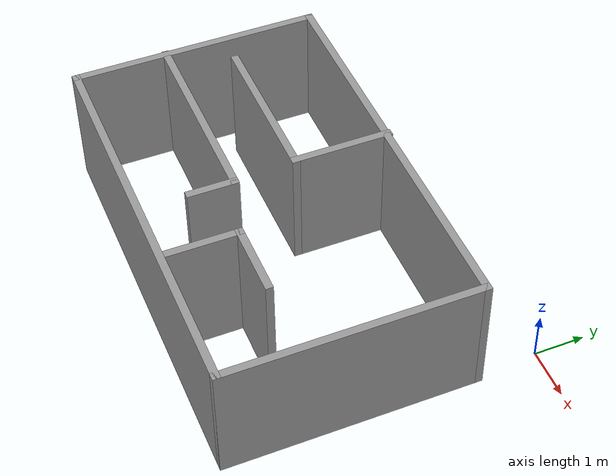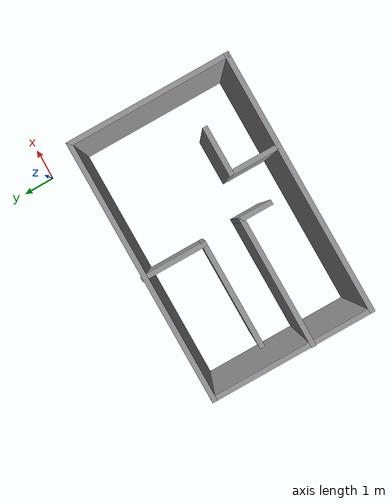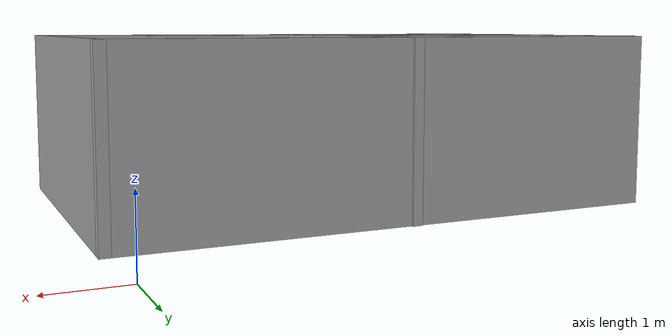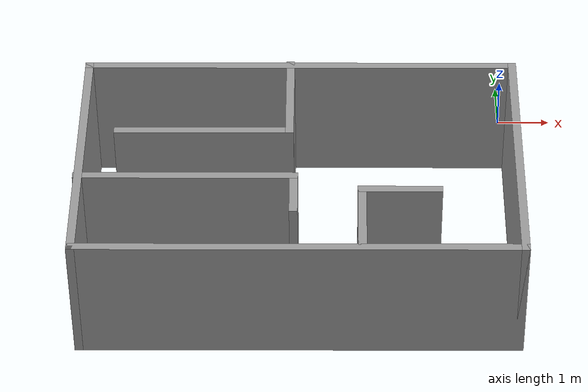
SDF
<?xml version='1.0'?>
<sdf version='1.7'>
  <model name='room'>
    <pose>-3.835 -3.0825 0 0 -0 0</pose>
    <link name='Wall_0'>
      <collision name='Wall_0_Collision'>
        <geometry>
          <box>
            <size>8 0.15 2.5</size>
          </box>
        </geometry>
        <pose>0 0 1.25 0 -0 0</pose>
      </collision>
      <visual name='Wall_0_Visual'>
        <pose>0 0 1.25 0 -0 0</pose>
        <geometry>
          <box>
            <size>8 0.15 2.5</size>
          </box>
        </geometry>
        <material>
          <script>
            <uri>file://media/materials/scripts/gazebo.material</uri>
            <name>Gazebo/Grey</name>
          </script>
          <ambient>1 1 1 1</ambient>
        </material>
        <meta>
          <layer>0</layer>
        </meta>
      </visual>
      <pose>0.01 1.8425 0 0 -0 3.14159</pose>
    </link>
    <link name='Wall_1'>
      <collision name='Wall_1_Collision'>
        <geometry>
          <box>
            <size>5 0.15 2.5</size>
          </box>
        </geometry>
        <pose>0 0 1.25 0 -0 0</pose>
      </collision>
      <visual name='Wall_1_Visual'>
        <pose>0 0 1.25 0 -0 0</pose>
        <geometry>
          <box>
            <size>5 0.15 2.5</size>
          </box>
        </geometry>
        <material>
          <script>
            <uri>file://media/materials/scripts/gazebo.material</uri>
            <name>Gazebo/Grey</name>
          </script>
          <ambient>1 1 1 1</ambient>
        </material>
        <meta>
          <layer>0</layer>
        </meta>
      </visual>
      <pose>-3.915 -0.5825 0 0 -0 -1.5708</pose>
    </link>
    <link name='Wall_10'>
      <collision name='Wall_10_Collision'>
        <geometry>
          <box>
            <size>4 0.15 2.5</size>
          </box>
        </geometry>
        <pose>0 0 1.25 0 -0 0</pose>
      </collision>
      <visual name='Wall_10_Visual'>
        <pose>0 0 1.25 0 -0 0</pose>
        <geometry>
          <box>
            <size>4 0.15 2.5</size>
          </box>
        </geometry>
        <material>
          <script>
            <uri>file://media/materials/scripts/gazebo.material</uri>
            <name>Gazebo/Grey</name>
          </script>
          <ambient>1 1 1 1</ambient>
        </material>
        <meta>
          <layer>0</layer>
        </meta>
      </visual>
      <pose>-2.01 -1.1875 0 0 -0 0</pose>
    </link>
    <link name='Wall_11'>
      <collision name='Wall_11_Collision'>
        <geometry>
          <box>
            <size>1 0.15 2.5</size>
          </box>
        </geometry>
        <pose>0 0 1.25 0 -0 0</pose>
      </collision>
      <visual name='Wall_11_Visual'>
        <pose>0 0 1.25 0 -0 0</pose>
        <geometry>
          <box>
            <size>1 0.15 2.5</size>
          </box>
        </geometry>
        <material>
          <script>
            <uri>file://media/materials/scripts/gazebo.material</uri>
            <name>Gazebo/Grey</name>
          </script>
          <ambient>1 1 1 1</ambient>
        </material>
        <meta>
          <layer>0</layer>
        </meta>
      </visual>
      <pose>-0.085 -1.6125 0 0 -0 -1.5708</pose>
    </link>
    <link name='Wall_13'>
      <collision name='Wall_13_Collision'>
        <geometry>
          <box>
            <size>1.5 0.15 2.5</size>
          </box>
        </geometry>
        <pose>0 0 1.25 0 -0 0</pose>
      </collision>
      <visual name='Wall_13_Visual'>
        <pose>0 0 1.25 0 -0 0</pose>
        <geometry>
          <box>
            <size>1.5 0.15 2.5</size>
          </box>
        </geometry>
        <material>
          <script>
            <uri>file://media/materials/scripts/gazebo.material</uri>
            <name>Gazebo/Grey</name>
          </script>
          <ambient>1 1 1 1</ambient>
        </material>
        <meta>
          <layer>0</layer>
        </meta>
      </visual>
      <pose>1.8 -1.5375 0 0 -0 3.14159</pose>
    </link>
    <link name='Wall_14'>
      <collision name='Wall_14_Collision'>
        <geometry>
          <box>
            <size>1.5 0.15 2.5</size>
          </box>
        </geometry>
        <pose>0 0 1.25 0 -0 0</pose>
      </collision>
      <visual name='Wall_14_Visual'>
        <pose>0 0 1.25 0 -0 0</pose>
        <geometry>
          <box>
            <size>1.5 0.15 2.5</size>
          </box>
        </geometry>
        <material>
          <script>
            <uri>file://media/materials/scripts/gazebo.material</uri>
            <name>Gazebo/Grey</name>
          </script>
          <ambient>1 1 1 1</ambient>
        </material>
        <meta>
          <layer>0</layer>
        </meta>
      </visual>
      <pose>1.125 -2.2125 0 0 -0 -1.5708</pose>
    </link>
    <link name='Wall_2'>
      <collision name='Wall_2_Collision'>
        <geometry>
          <box>
            <size>8 0.15 2.5</size>
          </box>
        </geometry>
        <pose>0 0 1.25 0 -0 0</pose>
      </collision>
      <visual name='Wall_2_Visual'>
        <pose>0 0 1.25 0 -0 0</pose>
        <geometry>
          <box>
            <size>8 0.15 2.5</size>
          </box>
        </geometry>
        <material>
          <script>
            <uri>file://media/materials/scripts/gazebo.material</uri>
            <name>Gazebo/Grey</name>
          </script>
          <ambient>1 1 1 1</ambient>
        </material>
        <meta>
          <layer>0</layer>
        </meta>
      </visual>
      <pose>0.01 -3.0075 0 0 -0 0</pose>
    </link>
    <link name='Wall_3'>
      <collision name='Wall_3_Collision'>
        <geometry>
          <box>
            <size>5 0.15 2.5</size>
          </box>
        </geometry>
        <pose>0 0 1.25 0 -0 0</pose>
      </collision>
      <visual name='Wall_3_Visual'>
        <pose>0 0 1.25 0 -0 0</pose>
        <geometry>
          <box>
            <size>5 0.15 2.5</size>
          </box>
        </geometry>
        <material>
          <script>
            <uri>file://media/materials/scripts/gazebo.material</uri>
            <name>Gazebo/Grey</name>
          </script>
          <ambient>1 1 1 1</ambient>
        </material>
        <meta>
          <layer>0</layer>
        </meta>
      </visual>
      <pose>3.935 -0.5825 0 0 -0 1.5708</pose>
    </link>
    <link name='Wall_7'>
      <collision name='Wall_7_Collision'>
        <geometry>
          <box>
            <size>2 0.15 2.5</size>
          </box>
        </geometry>
        <pose>0 0 1.25 0 -0 0</pose>
      </collision>
      <visual name='Wall_7_Visual'>
        <pose>0 0 1.25 0 -0 0</pose>
        <geometry>
          <box>
            <size>2 0.15 2.5</size>
          </box>
        </geometry>
        <material>
          <script>
            <uri>file://media/materials/scripts/gazebo.material</uri>
            <name>Gazebo/Grey</name>
          </script>
          <ambient>1 1 1 1</ambient>
        </material>
        <meta>
          <layer>0</layer>
        </meta>
      </visual>
      <pose>-0.175 0.9475 0 0 -0 -1.5708</pose>
    </link>
    <link name='Wall_8'>
      <collision name='Wall_8_Collision'>
        <geometry>
          <box>
            <size>3.25 0.15 2.5</size>
          </box>
        </geometry>
        <pose>0 0 1.25 0 -0 0</pose>
      </collision>
      <visual name='Wall_8_Visual'>
        <pose>0 0 1.25 0 -0 0</pose>
        <geometry>
          <box>
            <size>3.25 0.15 2.5</size>
          </box>
        </geometry>
        <material>
          <script>
            <uri>file://media/materials/scripts/gazebo.material</uri>
            <name>Gazebo/Grey</name>
          </script>
          <ambient>1 1 1 1</ambient>
        </material>
        <meta>
          <layer>0</layer>
        </meta>
      </visual>
      <pose>-1.725 0.0225 0 0 -0 3.14159</pose>
    </link>
    <static>1</static>
  </model>
</sdf>
